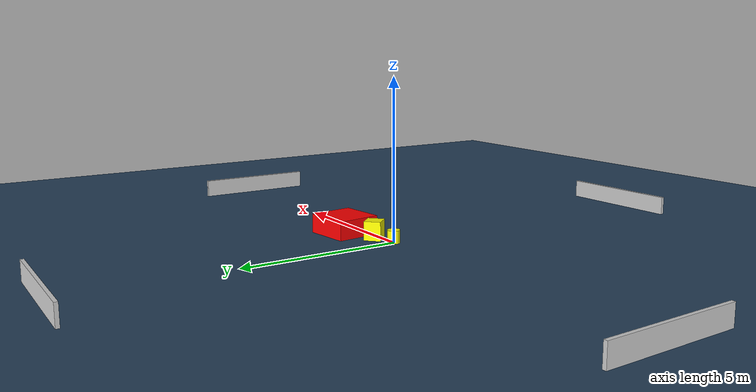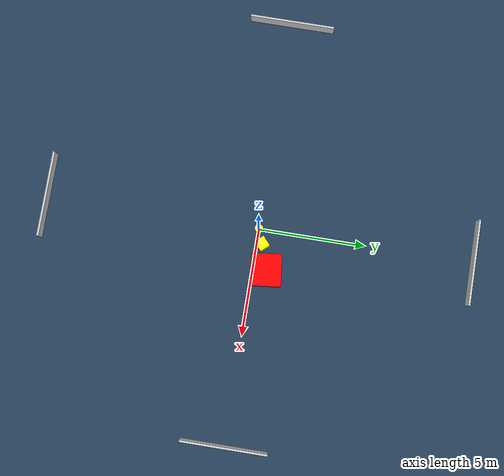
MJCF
<?xml version="1.0" ?>
<mujoco model="generated_environment">
  <option timestep="0.01" integrator="RK4" cone="elliptic"/>
  <default>
    <geom density="1"/>
  </default>
  <asset>
    <texture builtin="gradient" height="3072" name="skybox" rgb1="0.3 0.5 0.7" rgb2="0 0 0" type="skybox" width="512"/>
    <texture builtin="checker" height="300" name="groundplane" rgb1="0.2 0.3 0.4" rgb2="0.1 0.2 0.3" type="2d" width="300"/>
    <material name="groundplane" reflectance="0.2" texrepeat="5 5" texture="groundplane"/>
  </asset>
  <worldbody>
    <light dir="0 0 -1" directional="true" pos="0 0 1.5"/>
    <geom condim="3" friction="0.5 0.005 0.001" material="groundplane" name="floor" pos="0 0 0" size="0 0 0.05" type="plane"/>
    <body name="walls">
      <geom name="wall_1" condim="4" pos="-10.0 0.0 0.3" rgba="0.800000011920929 0.800000011920929 0.800000011920929 1.0" size="0.05 2.0 0.3" type="box"/>
      <geom name="wall_2" condim="4" pos="10.0 0.0 0.3" rgba="0.800000011920929 0.800000011920929 0.800000011920929 1.0" size="0.05 2.0 0.3" type="box"/>
      <geom name="wall_3" condim="4" pos="0.0 -10.0 0.3" rgba="0.800000011920929 0.800000011920929 0.800000011920929 1.0" size="2.0 0.05 0.3" type="box"/>
      <geom name="wall_4" condim="4" pos="0.0 10.0 0.3" rgba="0.800000011920929 0.800000011920929 0.800000011920929 1.0" size="2.0 0.05 0.3" type="box"/>
    </body>
    <body name="robot">
      <joint name="joint_x" type="slide" pos="0 0 0" axis="1 0 0"/>
      <joint name="joint_y" type="slide" pos="0 0 0" axis="0 1 0"/>
      <geom name="robot" type="cylinder" pos="0.0 0.0 0.2" size="0.2 0.2 0.0" mass="5.0" friction="1.0 0.005 0.0001" condim="4" rgba="1.0 1.0 0.0 1.0"/>
    </body>
    <body name="obstacle_1_movable">
      <geom name="obstacle_1_movable" condim="4" pos="0.6898710459525138 0.2537254086667033 0.3" euler="0 0 41.4912157302977" friction="0.0 0.005 0.001" rgba="1.0 1.0 0.0 1.0" size="0.26303342573694427 0.254188653378318 0.3" type="box" mass="0.1"/>
      <joint type="free"/>
    </body>
    <body name="obstacle_2_static">
      <geom name="obstacle_2_static" condim="4" pos="1.8560364833981364 0.6207306486453115 0.3" euler="0 0 186.20466739481773" friction="0.0 0.005 0.001" rgba="1.0 0.0 0.0 1.0" size="0.7521536207131132 0.7102857572766355 0.3" type="box"/>
    </body>
  </worldbody>
  <actuator>
    <motor name="actuator_x" joint="joint_x" gear="1" ctrlrange="-1 1"/>
    <motor name="actuator_y" joint="joint_y" gear="1" ctrlrange="-1 1"/>
  </actuator>
</mujoco>
